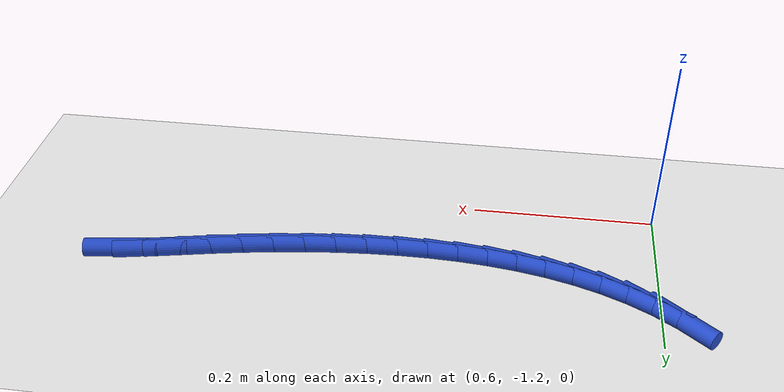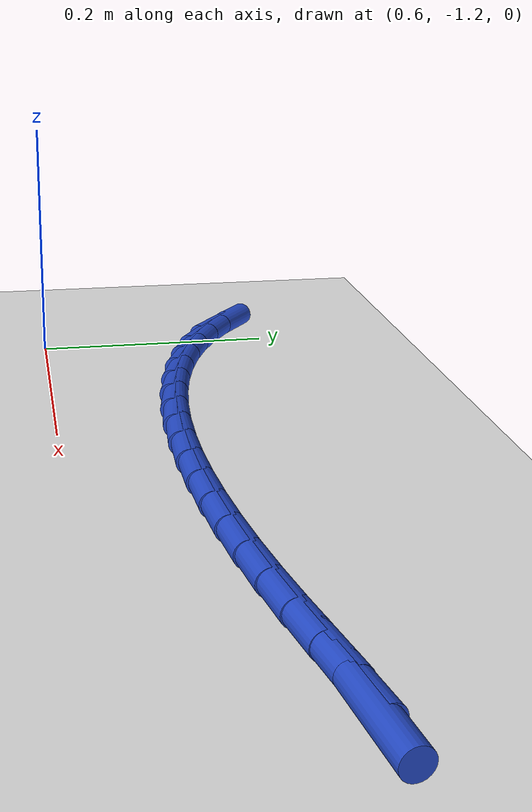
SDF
<sdf version="1.6">
 <world name="default">
  <model name="ground_plane">
   <static>1</static>
   <link name="link">
    <collision name="collision">
     <geometry><plane><normal>0 0 1</normal><size>100 100</size></plane></geometry>
     <surface><friction><ode><mu>100</mu><mu2>50</mu2></ode></friction></surface>
    </collision>
    <visual name="visual">
     <cast_shadows>0</cast_shadows>
     <geometry><plane><normal>0 0 1</normal><size>100 100</size></plane></geometry>
     <material>
      <script><uri>file://media/materials/scripts/gazebo.material</uri><name>Gazebo/WhiteGlow</name></script>
     </material>
    </visual>
   </link>
  </model>
  <model name="line">
   <link name="link_182">
    <pose>1.1754430853392455 -1.067324647299571 0.01 0 1.57 0.14209867637884263</pose>
    <collision name="collision">
     <geometry><cylinder><radius>0.01</radius><length>0.08</length></cylinder></geometry>
    </collision>
    <visual name="visual">
     <material>
      <script><name>Gazebo/Blue</name><uri>file://media/materials/scripts/gazebo.material</uri></script>
     </material>
     <geometry><cylinder><radius>0.01</radius><length>0.08</length></cylinder></geometry>
    </visual>
   </link>
   <link name="link_183">
    <pose>1.144039076530701 -1.0718173954094168 0.01 0 1.57 0.19627266083980055</pose>
    <collision name="collision">
     <geometry><cylinder><radius>0.01</radius><length>0.08</length></cylinder></geometry>
    </collision>
    <visual name="visual">
     <material>
      <script><name>Gazebo/Blue</name><uri>file://media/materials/scripts/gazebo.material</uri></script>
     </material>
     <geometry><cylinder><radius>0.01</radius><length>0.08</length></cylinder></geometry>
    </visual>
   </link>
   <link name="link_184">
    <pose>1.111883579985786 -1.0782109514638285 0.01 0 1.57 0.2087411181748203</pose>
    <collision name="collision">
     <geometry><cylinder><radius>0.01</radius><length>0.08</length></cylinder></geometry>
    </collision>
    <visual name="visual">
     <material>
      <script><name>Gazebo/Blue</name><uri>file://media/materials/scripts/gazebo.material</uri></script>
     </material>
     <geometry><cylinder><radius>0.01</radius><length>0.08</length></cylinder></geometry>
    </visual>
   </link>
   <link name="link_185">
    <pose>1.0791131038898183 -1.0851526140680807 0.01 0 1.57 0.1905872769896273</pose>
    <collision name="collision">
     <geometry><cylinder><radius>0.01</radius><length>0.08</length></cylinder></geometry>
    </collision>
    <visual name="visual">
     <material>
      <script><name>Gazebo/Blue</name><uri>file://media/materials/scripts/gazebo.material</uri></script>
     </material>
     <geometry><cylinder><radius>0.01</radius><length>0.08</length></cylinder></geometry>
    </visual>
   </link>
   <link name="link_186">
    <pose>1.0458640743607293 -1.0915673129265493 0.01 0 1.57 0.1660573659058892</pose>
    <collision name="collision">
     <geometry><cylinder><radius>0.01</radius><length>0.08</length></cylinder></geometry>
    </collision>
    <visual name="visual">
     <material>
      <script><name>Gazebo/Blue</name><uri>file://media/materials/scripts/gazebo.material</uri></script>
     </material>
     <geometry><cylinder><radius>0.01</radius><length>0.08</length></cylinder></geometry>
    </visual>
   </link>
   <link name="link_187">
    <pose>1.0122726759300344 -1.0971972561015555 0.01 0 1.57 0.139251611649281</pose>
    <collision name="collision">
     <geometry><cylinder><radius>0.01</radius><length>0.08</length></cylinder></geometry>
    </collision>
    <visual name="visual">
     <material>
      <script><name>Gazebo/Blue</name><uri>file://media/materials/scripts/gazebo.material</uri></script>
     </material>
     <geometry><cylinder><radius>0.01</radius><length>0.08</length></cylinder></geometry>
    </visual>
   </link>
   <link name="link_188">
    <pose>0.9784750488968231 -1.1019342884065455 0.01 0 1.57 0.10986635199679196</pose>
    <collision name="collision">
     <geometry><cylinder><radius>0.01</radius><length>0.08</length></cylinder></geometry>
    </collision>
    <visual name="visual">
     <material>
      <script><name>Gazebo/Blue</name><uri>file://media/materials/scripts/gazebo.material</uri></script>
     </material>
     <geometry><cylinder><radius>0.01</radius><length>0.08</length></cylinder></geometry>
    </visual>
   </link>
   <link name="link_189">
    <pose>0.9446073335601848 -1.1056702546549657 0.01 0 1.57 0.07755466003880006</pose>
    <collision name="collision">
     <geometry><cylinder><radius>0.01</radius><length>0.08</length></cylinder></geometry>
    </collision>
    <visual name="visual">
     <material>
      <script><name>Gazebo/Blue</name><uri>file://media/materials/scripts/gazebo.material</uri></script>
     </material>
     <geometry><cylinder><radius>0.01</radius><length>0.08</length></cylinder></geometry>
    </visual>
   </link>
   <link name="link_190">
    <pose>0.910805670219209 -1.1082969996602625 0.01 0 1.57 0.04192157846828725</pose>
    <collision name="collision">
     <geometry><cylinder><radius>0.01</radius><length>0.08</length></cylinder></geometry>
    </collision>
    <visual name="visual">
     <material>
      <script><name>Gazebo/Blue</name><uri>file://media/materials/scripts/gazebo.material</uri></script>
     </material>
     <geometry><cylinder><radius>0.01</radius><length>0.08</length></cylinder></geometry>
    </visual>
   </link>
   <link name="link_191">
    <pose>0.8772061991729846 -1.1097063682358823 0.01 0 1.57 0.0025205626068465765</pose>
    <collision name="collision">
     <geometry><cylinder><radius>0.01</radius><length>0.08</length></cylinder></geometry>
    </collision>
    <visual name="visual">
     <material>
      <script><name>Gazebo/Blue</name><uri>file://media/materials/scripts/gazebo.material</uri></script>
     </material>
     <geometry><cylinder><radius>0.01</radius><length>0.08</length></cylinder></geometry>
    </visual>
   </link>
   <link name="link_192">
    <pose>0.8439450607206004 -1.109790205195272 0.01 0 1.57 -0.04114745791111787</pose>
    <collision name="collision">
     <geometry><cylinder><radius>0.01</radius><length>0.08</length></cylinder></geometry>
    </collision>
    <visual name="visual">
     <material>
      <script><name>Gazebo/Blue</name><uri>file://media/materials/scripts/gazebo.material</uri></script>
     </material>
     <geometry><cylinder><radius>0.01</radius><length>0.08</length></cylinder></geometry>
    </visual>
   </link>
   <link name="link_193">
    <pose>0.8111583951611474 -1.1084403553518776 0.01 0 1.57 -0.08963014233302427</pose>
    <collision name="collision">
     <geometry><cylinder><radius>0.01</radius><length>0.08</length></cylinder></geometry>
    </collision>
    <visual name="visual">
     <material>
      <script><name>Gazebo/Blue</name><uri>file://media/materials/scripts/gazebo.material</uri></script>
     </material>
     <geometry><cylinder><radius>0.01</radius><length>0.08</length></cylinder></geometry>
    </visual>
   </link>
   <link name="link_194">
    <pose>0.7789823427937139 -1.1055486635191452 0.01 0 1.57 -0.14351152383512358</pose>
    <collision name="collision">
     <geometry><cylinder><radius>0.01</radius><length>0.08</length></cylinder></geometry>
    </collision>
    <visual name="visual">
     <material>
      <script><name>Gazebo/Blue</name><uri>file://media/materials/scripts/gazebo.material</uri></script>
     </material>
     <geometry><cylinder><radius>0.01</radius><length>0.08</length></cylinder></geometry>
    </visual>
   </link>
   <link name="link_195">
    <pose>0.7475530439173893 -1.1010069745105215 0.01 0 1.57 -0.20338675135303189</pose>
    <collision name="collision">
     <geometry><cylinder><radius>0.01</radius><length>0.08</length></cylinder></geometry>
    </collision>
    <visual name="visual">
     <material>
      <script><name>Gazebo/Blue</name><uri>file://media/materials/scripts/gazebo.material</uri></script>
     </material>
     <geometry><cylinder><radius>0.01</radius><length>0.08</length></cylinder></geometry>
    </visual>
   </link>
   <link name="link_196">
    <pose>0.717006638831263 -1.0947071331394533 0.01 0 1.57 -0.26981781363823115</pose>
    <collision name="collision">
     <geometry><cylinder><radius>0.01</radius><length>0.08</length></cylinder></geometry>
    </collision>
    <visual name="visual">
     <material>
      <script><name>Gazebo/Blue</name><uri>file://media/materials/scripts/gazebo.material</uri></script>
     </material>
     <geometry><cylinder><radius>0.01</radius><length>0.08</length></cylinder></geometry>
    </visual>
   </link>
   <link name="link_197">
    <pose>0.6874792678344244 -1.0865409842193867 0.01 0 1.57 -0.3432641208565222</pose>
    <collision name="collision">
     <geometry><cylinder><radius>0.01</radius><length>0.08</length></cylinder></geometry>
    </collision>
    <visual name="visual">
     <material>
      <script><name>Gazebo/Blue</name><uri>file://media/materials/scripts/gazebo.material</uri></script>
     </material>
     <geometry><cylinder><radius>0.01</radius><length>0.08</length></cylinder></geometry>
    </visual>
   </link>
   <link name="link_198">
    <pose>0.6591070712259626 -1.0764003725637679 0.01 0 1.57 -0.42398441072863763</pose>
    <collision name="collision">
     <geometry><cylinder><radius>0.01</radius><length>0.08</length></cylinder></geometry>
    </collision>
    <visual name="visual">
     <material>
      <script><name>Gazebo/Blue</name><uri>file://media/materials/scripts/gazebo.material</uri></script>
     </material>
     <geometry><cylinder><radius>0.01</radius><length>0.08</length></cylinder></geometry>
    </visual>
   </link>
   <link name="link_199">
    <pose>0.6320261893049671 -1.0641771429860434 0.01 0 1.57 -0.5119140650684962</pose>
    <collision name="collision">
     <geometry><cylinder><radius>0.01</radius><length>0.08</length></cylinder></geometry>
    </collision>
    <visual name="visual">
     <material>
      <script><name>Gazebo/Blue</name><uri>file://media/materials/scripts/gazebo.material</uri></script>
     </material>
     <geometry><cylinder><radius>0.01</radius><length>0.08</length></cylinder></geometry>
    </visual>
   </link>
   <link name="link_200">
    <pose>0.6063727623705264 -1.0497631402996594 0.01 0 1.57 -0.6065334601652073</pose>
    <collision name="collision">
     <geometry><cylinder><radius>0.01</radius><length>0.08</length></cylinder></geometry>
    </collision>
    <visual name="visual">
     <material>
      <script><name>Gazebo/Blue</name><uri>file://media/materials/scripts/gazebo.material</uri></script>
     </material>
     <geometry><cylinder><radius>0.01</radius><length>0.08</length></cylinder></geometry>
    </visual>
   </link>
   <link name="link_201">
    <pose>0.5822828779914918 -1.033050267209194 0.01 0 1.57 -0.7026882651559566</pose>
    <collision name="collision">
     <geometry><cylinder><radius>0.01</radius><length>0.08</length></cylinder></geometry>
    </collision>
    <visual name="visual">
     <material>
      <script><name>Gazebo/Blue</name><uri>file://media/materials/scripts/gazebo.material</uri></script>
     </material>
     <geometry><cylinder><radius>0.01</radius><length>0.08</length></cylinder></geometry>
    </visual>
   </link>
  </model>
 </world>
</sdf>
